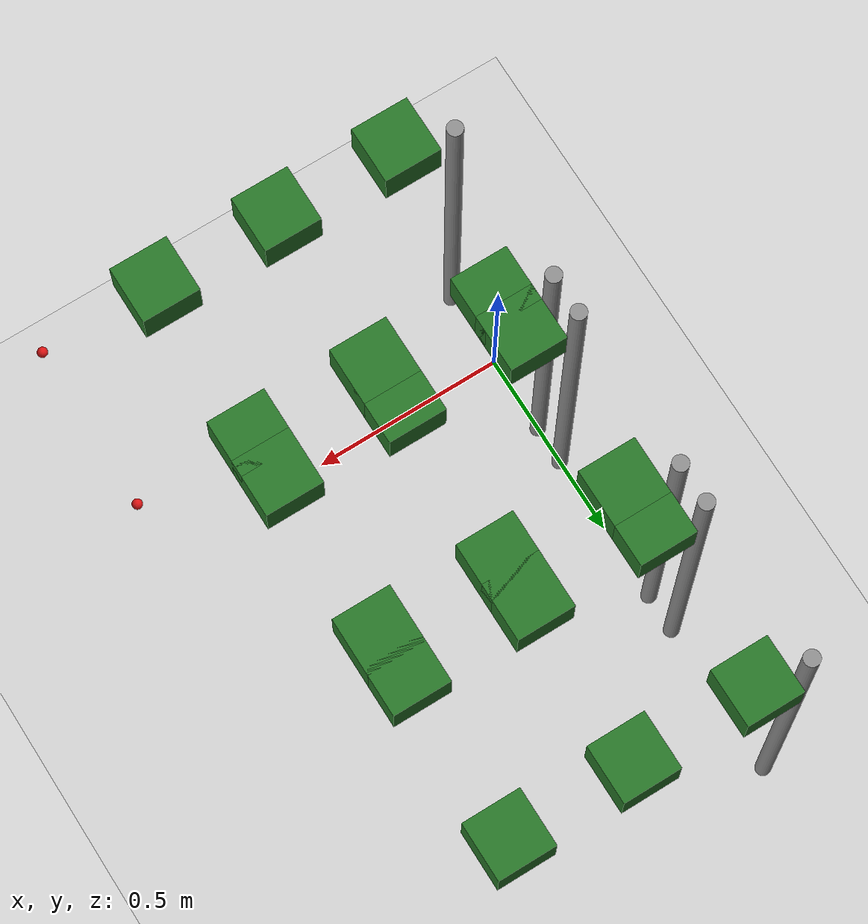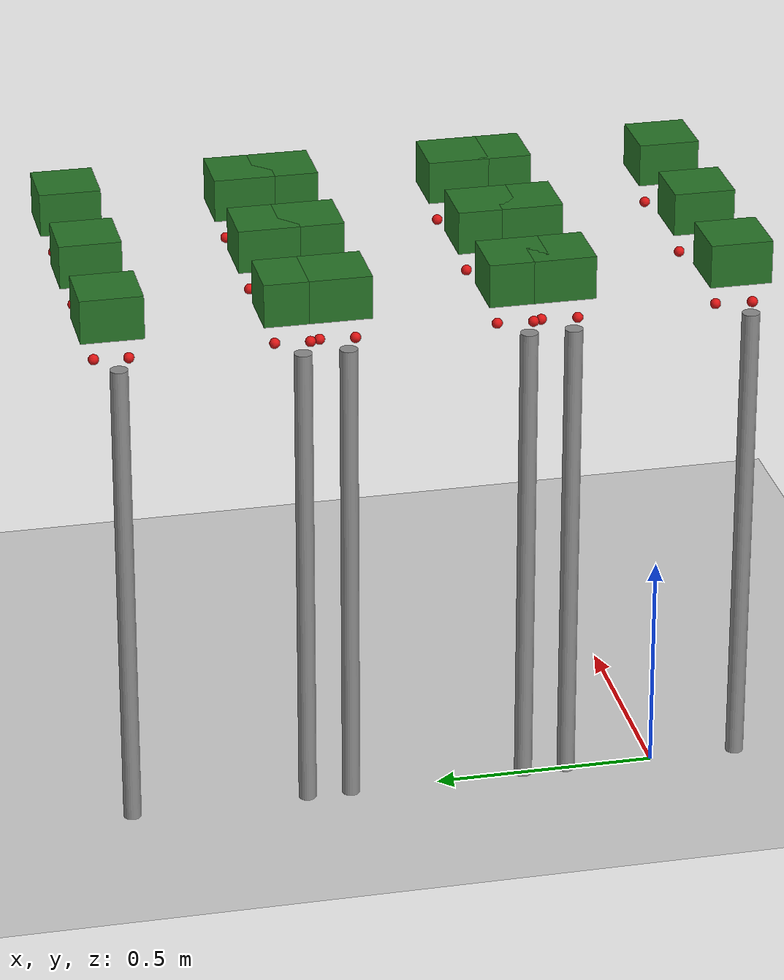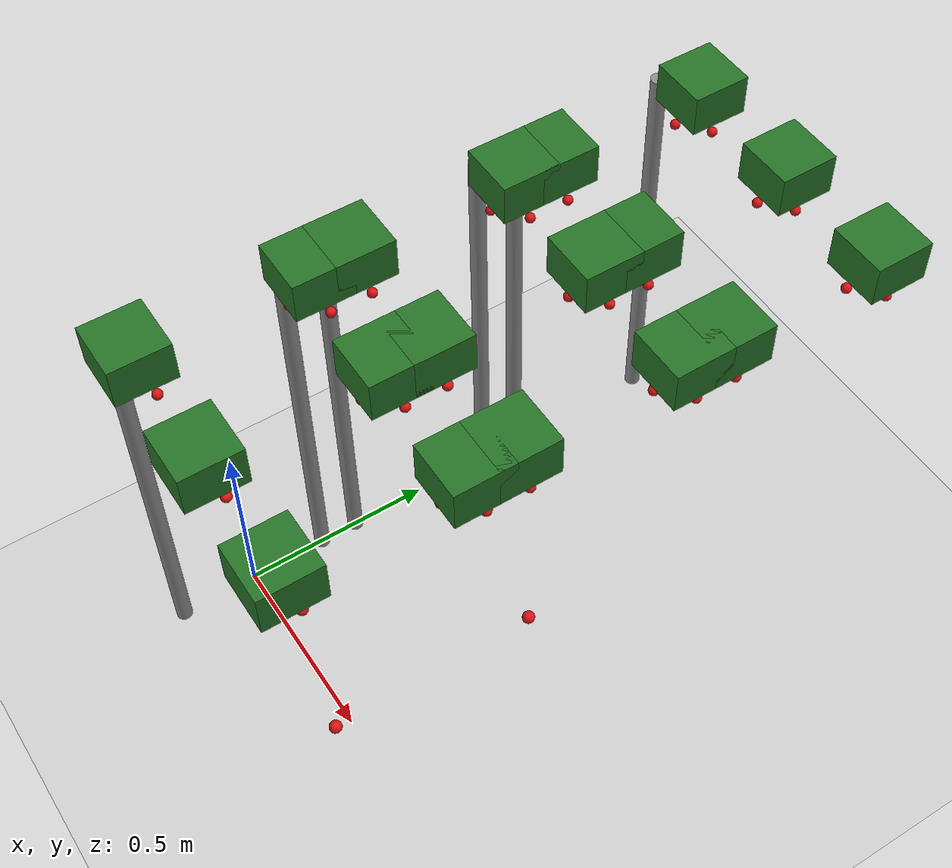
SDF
<sdf version="1.7">
 <world name="irish_polytunnel">
  <include><uri>model://sun</uri></include>
  <include><uri>model://ground_plane</uri></include>
  <model name="row0_L_post0">
   <static>true</static>
   <pose>0.000 0.200 0.550 0 0 0</pose>
   <link name="link">
    <collision name="collision">
     <geometry><cylinder><radius>0.02</radius><length>1.100</length></cylinder></geometry>
    </collision>
    <visual name="visual">
     <geometry><cylinder><radius>0.02</radius><length>1.100</length></cylinder></geometry>
     <material><ambient>0.5 0.5 0.5 1</ambient><diffuse>0.55 0.55 0.55 1</diffuse></material>
    </visual>
   </link>
  </model>
  <model name="row0_L_plant0_foliage">
   <static>true</static>
   <pose>0.150 0.200 1.180 0 0 0</pose>
   <link name="link">
    <visual name="visual">
     <geometry><box><size>0.14 0.14 0.10</size></box></geometry>
     <material><ambient>0.10 0.35 0.10 1</ambient><diffuse>0.15 0.45 0.15 1</diffuse></material>
    </visual>
   </link>
  </model>
  <model name="row0_L_plant0_berry_0">
   <static>true</static>
   <pose>0.120 0.160 1.070 0 0 0</pose>
   <link name="link">
    <visual name="visual">
     <geometry><sphere><radius>0.012</radius></sphere></geometry>
     <material><ambient>0.75 0.05 0.05 1</ambient><diffuse>0.85 0.08 0.08 1</diffuse></material>
    </visual>
   </link>
  </model>
  <model name="row0_L_plant0_berry_1">
   <static>true</static>
   <pose>0.170 0.230 1.050 0 0 0</pose>
   <link name="link">
    <visual name="visual">
     <geometry><sphere><radius>0.012</radius></sphere></geometry>
     <material><ambient>0.75 0.05 0.05 1</ambient><diffuse>0.85 0.08 0.08 1</diffuse></material>
    </visual>
   </link>
  </model>
  <model name="row0_L_plant1_foliage">
   <static>true</static>
   <pose>0.450 0.200 1.180 0 0 0</pose>
   <link name="link">
    <visual name="visual">
     <geometry><box><size>0.14 0.14 0.10</size></box></geometry>
     <material><ambient>0.10 0.35 0.10 1</ambient><diffuse>0.15 0.45 0.15 1</diffuse></material>
    </visual>
   </link>
  </model>
  <model name="row0_L_plant1_berry_0">
   <static>true</static>
   <pose>0.420 0.160 1.070 0 0 0</pose>
   <link name="link">
    <visual name="visual">
     <geometry><sphere><radius>0.012</radius></sphere></geometry>
     <material><ambient>0.75 0.05 0.05 1</ambient><diffuse>0.85 0.08 0.08 1</diffuse></material>
    </visual>
   </link>
  </model>
  <model name="row0_L_plant1_berry_1">
   <static>true</static>
   <pose>0.470 0.230 1.050 0 0 0</pose>
   <link name="link">
    <visual name="visual">
     <geometry><sphere><radius>0.012</radius></sphere></geometry>
     <material><ambient>0.75 0.05 0.05 1</ambient><diffuse>0.85 0.08 0.08 1</diffuse></material>
    </visual>
   </link>
  </model>
  <model name="row0_L_plant2_foliage">
   <static>true</static>
   <pose>0.750 0.200 1.180 0 0 0</pose>
   <link name="link">
    <visual name="visual">
     <geometry><box><size>0.14 0.14 0.10</size></box></geometry>
     <material><ambient>0.10 0.35 0.10 1</ambient><diffuse>0.15 0.45 0.15 1</diffuse></material>
    </visual>
   </link>
  </model>
  <model name="row0_L_plant2_berry_0">
   <static>true</static>
   <pose>0.720 0.160 1.070 0 0 0</pose>
   <link name="link">
    <visual name="visual">
     <geometry><sphere><radius>0.012</radius></sphere></geometry>
     <material><ambient>0.75 0.05 0.05 1</ambient><diffuse>0.85 0.08 0.08 1</diffuse></material>
    </visual>
   </link>
  </model>
  <model name="row0_L_plant2_berry_1">
   <static>true</static>
   <pose>0.770 0.230 1.050 0 0 0</pose>
   <link name="link">
    <visual name="visual">
     <geometry><sphere><radius>0.012</radius></sphere></geometry>
     <material><ambient>0.75 0.05 0.05 1</ambient><diffuse>0.85 0.08 0.08 1</diffuse></material>
    </visual>
   </link>
  </model>
  <model name="row0_L_plant3_berry_0">
   <static>true</static>
   <pose>1.020 0.160 1.070 0 0 0</pose>
   <link name="link">
    <visual name="visual">
     <geometry><sphere><radius>0.012</radius></sphere></geometry>
     <material><ambient>0.75 0.05 0.05 1</ambient><diffuse>0.85 0.08 0.08 1</diffuse></material>
    </visual>
   </link>
  </model>
  <model name="row0_R_post0">
   <static>true</static>
   <pose>0.000 -0.200 0.550 0 0 0</pose>
   <link name="link">
    <collision name="collision">
     <geometry><cylinder><radius>0.02</radius><length>1.100</length></cylinder></geometry>
    </collision>
    <visual name="visual">
     <geometry><cylinder><radius>0.02</radius><length>1.100</length></cylinder></geometry>
     <material><ambient>0.5 0.5 0.5 1</ambient><diffuse>0.55 0.55 0.55 1</diffuse></material>
    </visual>
   </link>
  </model>
  <model name="row0_R_plant0_foliage">
   <static>true</static>
   <pose>0.150 -0.200 1.180 0 0 0</pose>
   <link name="link">
    <visual name="visual">
     <geometry><box><size>0.14 0.14 0.10</size></box></geometry>
     <material><ambient>0.10 0.35 0.10 1</ambient><diffuse>0.15 0.45 0.15 1</diffuse></material>
    </visual>
   </link>
  </model>
  <model name="row0_R_plant0_berry_0">
   <static>true</static>
   <pose>0.120 -0.240 1.070 0 0 0</pose>
   <link name="link">
    <visual name="visual">
     <geometry><sphere><radius>0.012</radius></sphere></geometry>
     <material><ambient>0.75 0.05 0.05 1</ambient><diffuse>0.85 0.08 0.08 1</diffuse></material>
    </visual>
   </link>
  </model>
  <model name="row0_R_plant0_berry_1">
   <static>true</static>
   <pose>0.170 -0.170 1.050 0 0 0</pose>
   <link name="link">
    <visual name="visual">
     <geometry><sphere><radius>0.012</radius></sphere></geometry>
     <material><ambient>0.75 0.05 0.05 1</ambient><diffuse>0.85 0.08 0.08 1</diffuse></material>
    </visual>
   </link>
  </model>
  <model name="row0_R_plant1_foliage">
   <static>true</static>
   <pose>0.450 -0.200 1.180 0 0 0</pose>
   <link name="link">
    <visual name="visual">
     <geometry><box><size>0.14 0.14 0.10</size></box></geometry>
     <material><ambient>0.10 0.35 0.10 1</ambient><diffuse>0.15 0.45 0.15 1</diffuse></material>
    </visual>
   </link>
  </model>
  <model name="row0_R_plant1_berry_0">
   <static>true</static>
   <pose>0.420 -0.240 1.070 0 0 0</pose>
   <link name="link">
    <visual name="visual">
     <geometry><sphere><radius>0.012</radius></sphere></geometry>
     <material><ambient>0.75 0.05 0.05 1</ambient><diffuse>0.85 0.08 0.08 1</diffuse></material>
    </visual>
   </link>
  </model>
  <model name="row0_R_plant1_berry_1">
   <static>true</static>
   <pose>0.470 -0.170 1.050 0 0 0</pose>
   <link name="link">
    <visual name="visual">
     <geometry><sphere><radius>0.012</radius></sphere></geometry>
     <material><ambient>0.75 0.05 0.05 1</ambient><diffuse>0.85 0.08 0.08 1</diffuse></material>
    </visual>
   </link>
  </model>
  <model name="row0_R_plant2_foliage">
   <static>true</static>
   <pose>0.750 -0.200 1.180 0 0 0</pose>
   <link name="link">
    <visual name="visual">
     <geometry><box><size>0.14 0.14 0.10</size></box></geometry>
     <material><ambient>0.10 0.35 0.10 1</ambient><diffuse>0.15 0.45 0.15 1</diffuse></material>
    </visual>
   </link>
  </model>
  <model name="row0_R_plant2_berry_0">
   <static>true</static>
   <pose>0.720 -0.240 1.070 0 0 0</pose>
   <link name="link">
    <visual name="visual">
     <geometry><sphere><radius>0.012</radius></sphere></geometry>
     <material><ambient>0.75 0.05 0.05 1</ambient><diffuse>0.85 0.08 0.08 1</diffuse></material>
    </visual>
   </link>
  </model>
  <model name="row0_R_plant2_berry_1">
   <static>true</static>
   <pose>0.770 -0.170 1.050 0 0 0</pose>
   <link name="link">
    <visual name="visual">
     <geometry><sphere><radius>0.012</radius></sphere></geometry>
     <material><ambient>0.75 0.05 0.05 1</ambient><diffuse>0.85 0.08 0.08 1</diffuse></material>
    </visual>
   </link>
  </model>
  <model name="row0_R_plant3_berry_0">
   <static>true</static>
   <pose>1.020 -0.240 1.070 0 0 0</pose>
   <link name="link">
    <visual name="visual">
     <geometry><sphere><radius>0.012</radius></sphere></geometry>
     <material><ambient>0.75 0.05 0.05 1</ambient><diffuse>0.85 0.08 0.08 1</diffuse></material>
    </visual>
   </link>
  </model>
  <model name="row1_L_post0">
   <static>true</static>
   <pose>0.000 0.700 0.550 0 0 0</pose>
   <link name="link">
    <collision name="collision">
     <geometry><cylinder><radius>0.02</radius><length>1.100</length></cylinder></geometry>
    </collision>
    <visual name="visual">
     <geometry><cylinder><radius>0.02</radius><length>1.100</length></cylinder></geometry>
     <material><ambient>0.5 0.5 0.5 1</ambient><diffuse>0.55 0.55 0.55 1</diffuse></material>
    </visual>
   </link>
  </model>
  <model name="row1_L_plant0_foliage">
   <static>true</static>
   <pose>0.150 0.700 1.180 0 0 0</pose>
   <link name="link">
    <visual name="visual">
     <geometry><box><size>0.14 0.14 0.10</size></box></geometry>
     <material><ambient>0.10 0.35 0.10 1</ambient><diffuse>0.15 0.45 0.15 1</diffuse></material>
    </visual>
   </link>
  </model>
  <model name="row1_L_plant0_berry_0">
   <static>true</static>
   <pose>0.120 0.660 1.070 0 0 0</pose>
   <link name="link">
    <visual name="visual">
     <geometry><sphere><radius>0.012</radius></sphere></geometry>
     <material><ambient>0.75 0.05 0.05 1</ambient><diffuse>0.85 0.08 0.08 1</diffuse></material>
    </visual>
   </link>
  </model>
  <model name="row1_L_plant0_berry_1">
   <static>true</static>
   <pose>0.170 0.730 1.050 0 0 0</pose>
   <link name="link">
    <visual name="visual">
     <geometry><sphere><radius>0.012</radius></sphere></geometry>
     <material><ambient>0.75 0.05 0.05 1</ambient><diffuse>0.85 0.08 0.08 1</diffuse></material>
    </visual>
   </link>
  </model>
  <model name="row1_L_plant1_foliage">
   <static>true</static>
   <pose>0.450 0.700 1.180 0 0 0</pose>
   <link name="link">
    <visual name="visual">
     <geometry><box><size>0.14 0.14 0.10</size></box></geometry>
     <material><ambient>0.10 0.35 0.10 1</ambient><diffuse>0.15 0.45 0.15 1</diffuse></material>
    </visual>
   </link>
  </model>
  <model name="row1_L_plant1_berry_0">
   <static>true</static>
   <pose>0.420 0.660 1.070 0 0 0</pose>
   <link name="link">
    <visual name="visual">
     <geometry><sphere><radius>0.012</radius></sphere></geometry>
     <material><ambient>0.75 0.05 0.05 1</ambient><diffuse>0.85 0.08 0.08 1</diffuse></material>
    </visual>
   </link>
  </model>
  <model name="row1_L_plant1_berry_1">
   <static>true</static>
   <pose>0.470 0.730 1.050 0 0 0</pose>
   <link name="link">
    <visual name="visual">
     <geometry><sphere><radius>0.012</radius></sphere></geometry>
     <material><ambient>0.75 0.05 0.05 1</ambient><diffuse>0.85 0.08 0.08 1</diffuse></material>
    </visual>
   </link>
  </model>
  <model name="row1_L_plant2_foliage">
   <static>true</static>
   <pose>0.750 0.700 1.180 0 0 0</pose>
   <link name="link">
    <visual name="visual">
     <geometry><box><size>0.14 0.14 0.10</size></box></geometry>
     <material><ambient>0.10 0.35 0.10 1</ambient><diffuse>0.15 0.45 0.15 1</diffuse></material>
    </visual>
   </link>
  </model>
  <model name="row1_L_plant2_berry_0">
   <static>true</static>
   <pose>0.720 0.660 1.070 0 0 0</pose>
   <link name="link">
    <visual name="visual">
     <geometry><sphere><radius>0.012</radius></sphere></geometry>
     <material><ambient>0.75 0.05 0.05 1</ambient><diffuse>0.85 0.08 0.08 1</diffuse></material>
    </visual>
   </link>
  </model>
  <model name="row1_L_plant2_berry_1">
   <static>true</static>
   <pose>0.770 0.730 1.050 0 0 0</pose>
   <link name="link">
    <visual name="visual">
     <geometry><sphere><radius>0.012</radius></sphere></geometry>
     <material><ambient>0.75 0.05 0.05 1</ambient><diffuse>0.85 0.08 0.08 1</diffuse></material>
    </visual>
   </link>
  </model>
  <model name="row1_R_post0">
   <static>true</static>
   <pose>0.000 0.300 0.550 0 0 0</pose>
   <link name="link">
    <collision name="collision">
     <geometry><cylinder><radius>0.02</radius><length>1.100</length></cylinder></geometry>
    </collision>
    <visual name="visual">
     <geometry><cylinder><radius>0.02</radius><length>1.100</length></cylinder></geometry>
     <material><ambient>0.5 0.5 0.5 1</ambient><diffuse>0.55 0.55 0.55 1</diffuse></material>
    </visual>
   </link>
  </model>
  <model name="row1_R_plant0_foliage">
   <static>true</static>
   <pose>0.150 0.300 1.180 0 0 0</pose>
   <link name="link">
    <visual name="visual">
     <geometry><box><size>0.14 0.14 0.10</size></box></geometry>
     <material><ambient>0.10 0.35 0.10 1</ambient><diffuse>0.15 0.45 0.15 1</diffuse></material>
    </visual>
   </link>
  </model>
  <model name="row1_R_plant0_berry_0">
   <static>true</static>
   <pose>0.120 0.260 1.070 0 0 0</pose>
   <link name="link">
    <visual name="visual">
     <geometry><sphere><radius>0.012</radius></sphere></geometry>
     <material><ambient>0.75 0.05 0.05 1</ambient><diffuse>0.85 0.08 0.08 1</diffuse></material>
    </visual>
   </link>
  </model>
  <model name="row1_R_plant0_berry_1">
   <static>true</static>
   <pose>0.170 0.330 1.050 0 0 0</pose>
   <link name="link">
    <visual name="visual">
     <geometry><sphere><radius>0.012</radius></sphere></geometry>
     <material><ambient>0.75 0.05 0.05 1</ambient><diffuse>0.85 0.08 0.08 1</diffuse></material>
    </visual>
   </link>
  </model>
  <model name="row1_R_plant1_foliage">
   <static>true</static>
   <pose>0.450 0.300 1.180 0 0 0</pose>
   <link name="link">
    <visual name="visual">
     <geometry><box><size>0.14 0.14 0.10</size></box></geometry>
     <material><ambient>0.10 0.35 0.10 1</ambient><diffuse>0.15 0.45 0.15 1</diffuse></material>
    </visual>
   </link>
  </model>
  <model name="row1_R_plant1_berry_0">
   <static>true</static>
   <pose>0.420 0.260 1.070 0 0 0</pose>
   <link name="link">
    <visual name="visual">
     <geometry><sphere><radius>0.012</radius></sphere></geometry>
     <material><ambient>0.75 0.05 0.05 1</ambient><diffuse>0.85 0.08 0.08 1</diffuse></material>
    </visual>
   </link>
  </model>
  <model name="row1_R_plant1_berry_1">
   <static>true</static>
   <pose>0.470 0.330 1.050 0 0 0</pose>
   <link name="link">
    <visual name="visual">
     <geometry><sphere><radius>0.012</radius></sphere></geometry>
     <material><ambient>0.75 0.05 0.05 1</ambient><diffuse>0.85 0.08 0.08 1</diffuse></material>
    </visual>
   </link>
  </model>
  <model name="row1_R_plant2_foliage">
   <static>true</static>
   <pose>0.750 0.300 1.180 0 0 0</pose>
   <link name="link">
    <visual name="visual">
     <geometry><box><size>0.14 0.14 0.10</size></box></geometry>
     <material><ambient>0.10 0.35 0.10 1</ambient><diffuse>0.15 0.45 0.15 1</diffuse></material>
    </visual>
   </link>
  </model>
  <model name="row1_R_plant2_berry_0">
   <static>true</static>
   <pose>0.720 0.260 1.070 0 0 0</pose>
   <link name="link">
    <visual name="visual">
     <geometry><sphere><radius>0.012</radius></sphere></geometry>
     <material><ambient>0.75 0.05 0.05 1</ambient><diffuse>0.85 0.08 0.08 1</diffuse></material>
    </visual>
   </link>
  </model>
  <model name="row1_R_plant2_berry_1">
   <static>true</static>
   <pose>0.770 0.330 1.050 0 0 0</pose>
   <link name="link">
    <visual name="visual">
     <geometry><sphere><radius>0.012</radius></sphere></geometry>
     <material><ambient>0.75 0.05 0.05 1</ambient><diffuse>0.85 0.08 0.08 1</diffuse></material>
    </visual>
   </link>
  </model>
  <model name="row2_L_post0">
   <static>true</static>
   <pose>0.000 1.200 0.550 0 0 0</pose>
   <link name="link">
    <collision name="collision">
     <geometry><cylinder><radius>0.02</radius><length>1.100</length></cylinder></geometry>
    </collision>
    <visual name="visual">
     <geometry><cylinder><radius>0.02</radius><length>1.100</length></cylinder></geometry>
     <material><ambient>0.5 0.5 0.5 1</ambient><diffuse>0.55 0.55 0.55 1</diffuse></material>
    </visual>
   </link>
  </model>
  <model name="row2_L_plant0_foliage">
   <static>true</static>
   <pose>0.150 1.200 1.180 0 0 0</pose>
   <link name="link">
    <visual name="visual">
     <geometry><box><size>0.14 0.14 0.10</size></box></geometry>
     <material><ambient>0.10 0.35 0.10 1</ambient><diffuse>0.15 0.45 0.15 1</diffuse></material>
    </visual>
   </link>
  </model>
  <model name="row2_L_plant0_berry_0">
   <static>true</static>
   <pose>0.120 1.160 1.070 0 0 0</pose>
   <link name="link">
    <visual name="visual">
     <geometry><sphere><radius>0.012</radius></sphere></geometry>
     <material><ambient>0.75 0.05 0.05 1</ambient><diffuse>0.85 0.08 0.08 1</diffuse></material>
    </visual>
   </link>
  </model>
  <model name="row2_L_plant0_berry_1">
   <static>true</static>
   <pose>0.170 1.230 1.050 0 0 0</pose>
   <link name="link">
    <visual name="visual">
     <geometry><sphere><radius>0.012</radius></sphere></geometry>
     <material><ambient>0.75 0.05 0.05 1</ambient><diffuse>0.85 0.08 0.08 1</diffuse></material>
    </visual>
   </link>
  </model>
  <model name="row2_L_plant1_foliage">
   <static>true</static>
   <pose>0.450 1.200 1.180 0 0 0</pose>
   <link name="link">
    <visual name="visual">
     <geometry><box><size>0.14 0.14 0.10</size></box></geometry>
     <material><ambient>0.10 0.35 0.10 1</ambient><diffuse>0.15 0.45 0.15 1</diffuse></material>
    </visual>
   </link>
  </model>
  <model name="row2_L_plant1_berry_0">
   <static>true</static>
   <pose>0.420 1.160 1.070 0 0 0</pose>
   <link name="link">
    <visual name="visual">
     <geometry><sphere><radius>0.012</radius></sphere></geometry>
     <material><ambient>0.75 0.05 0.05 1</ambient><diffuse>0.85 0.08 0.08 1</diffuse></material>
    </visual>
   </link>
  </model>
  <model name="row2_L_plant1_berry_1">
   <static>true</static>
   <pose>0.470 1.230 1.050 0 0 0</pose>
   <link name="link">
    <visual name="visual">
     <geometry><sphere><radius>0.012</radius></sphere></geometry>
     <material><ambient>0.75 0.05 0.05 1</ambient><diffuse>0.85 0.08 0.08 1</diffuse></material>
    </visual>
   </link>
  </model>
  <model name="row2_L_plant2_foliage">
   <static>true</static>
   <pose>0.750 1.200 1.180 0 0 0</pose>
   <link name="link">
    <visual name="visual">
     <geometry><box><size>0.14 0.14 0.10</size></box></geometry>
     <material><ambient>0.10 0.35 0.10 1</ambient><diffuse>0.15 0.45 0.15 1</diffuse></material>
    </visual>
   </link>
  </model>
  <model name="row2_L_plant2_berry_0">
   <static>true</static>
   <pose>0.720 1.160 1.070 0 0 0</pose>
   <link name="link">
    <visual name="visual">
     <geometry><sphere><radius>0.012</radius></sphere></geometry>
     <material><ambient>0.75 0.05 0.05 1</ambient><diffuse>0.85 0.08 0.08 1</diffuse></material>
    </visual>
   </link>
  </model>
  <model name="row2_L_plant2_berry_1">
   <static>true</static>
   <pose>0.770 1.230 1.050 0 0 0</pose>
   <link name="link">
    <visual name="visual">
     <geometry><sphere><radius>0.012</radius></sphere></geometry>
     <material><ambient>0.75 0.05 0.05 1</ambient><diffuse>0.85 0.08 0.08 1</diffuse></material>
    </visual>
   </link>
  </model>
  <model name="row2_R_post0">
   <static>true</static>
   <pose>0.000 0.800 0.550 0 0 0</pose>
   <link name="link">
    <collision name="collision">
     <geometry><cylinder><radius>0.02</radius><length>1.100</length></cylinder></geometry>
    </collision>
    <visual name="visual">
     <geometry><cylinder><radius>0.02</radius><length>1.100</length></cylinder></geometry>
     <material><ambient>0.5 0.5 0.5 1</ambient><diffuse>0.55 0.55 0.55 1</diffuse></material>
    </visual>
   </link>
  </model>
  <model name="row2_R_plant0_foliage">
   <static>true</static>
   <pose>0.150 0.800 1.180 0 0 0</pose>
   <link name="link">
    <visual name="visual">
     <geometry><box><size>0.14 0.14 0.10</size></box></geometry>
     <material><ambient>0.10 0.35 0.10 1</ambient><diffuse>0.15 0.45 0.15 1</diffuse></material>
    </visual>
   </link>
  </model>
  <model name="row2_R_plant0_berry_0">
   <static>true</static>
   <pose>0.120 0.760 1.070 0 0 0</pose>
   <link name="link">
    <visual name="visual">
     <geometry><sphere><radius>0.012</radius></sphere></geometry>
     <material><ambient>0.75 0.05 0.05 1</ambient><diffuse>0.85 0.08 0.08 1</diffuse></material>
    </visual>
   </link>
  </model>
  <model name="row2_R_plant0_berry_1">
   <static>true</static>
   <pose>0.170 0.830 1.050 0 0 0</pose>
   <link name="link">
    <visual name="visual">
     <geometry><sphere><radius>0.012</radius></sphere></geometry>
     <material><ambient>0.75 0.05 0.05 1</ambient><diffuse>0.85 0.08 0.08 1</diffuse></material>
    </visual>
   </link>
  </model>
  <model name="row2_R_plant1_foliage">
   <static>true</static>
   <pose>0.450 0.800 1.180 0 0 0</pose>
   <link name="link">
    <visual name="visual">
     <geometry><box><size>0.14 0.14 0.10</size></box></geometry>
     <material><ambient>0.10 0.35 0.10 1</ambient><diffuse>0.15 0.45 0.15 1</diffuse></material>
    </visual>
   </link>
  </model>
  <model name="row2_R_plant1_berry_0">
   <static>true</static>
   <pose>0.420 0.760 1.070 0 0 0</pose>
   <link name="link">
    <visual name="visual">
     <geometry><sphere><radius>0.012</radius></sphere></geometry>
     <material><ambient>0.75 0.05 0.05 1</ambient><diffuse>0.85 0.08 0.08 1</diffuse></material>
    </visual>
   </link>
  </model>
  <model name="row2_R_plant1_berry_1">
   <static>true</static>
   <pose>0.470 0.830 1.050 0 0 0</pose>
   <link name="link">
    <visual name="visual">
     <geometry><sphere><radius>0.012</radius></sphere></geometry>
     <material><ambient>0.75 0.05 0.05 1</ambient><diffuse>0.85 0.08 0.08 1</diffuse></material>
    </visual>
   </link>
  </model>
  <model name="row2_R_plant2_foliage">
   <static>true</static>
   <pose>0.750 0.800 1.180 0 0 0</pose>
   <link name="link">
    <visual name="visual">
     <geometry><box><size>0.14 0.14 0.10</size></box></geometry>
     <material><ambient>0.10 0.35 0.10 1</ambient><diffuse>0.15 0.45 0.15 1</diffuse></material>
    </visual>
   </link>
  </model>
  <model name="row2_R_plant2_berry_0">
   <static>true</static>
   <pose>0.720 0.760 1.070 0 0 0</pose>
   <link name="link">
    <visual name="visual">
     <geometry><sphere><radius>0.012</radius></sphere></geometry>
     <material><ambient>0.75 0.05 0.05 1</ambient><diffuse>0.85 0.08 0.08 1</diffuse></material>
    </visual>
   </link>
  </model>
  <model name="row2_R_plant2_berry_1">
   <static>true</static>
   <pose>0.770 0.830 1.050 0 0 0</pose>
   <link name="link">
    <visual name="visual">
     <geometry><sphere><radius>0.012</radius></sphere></geometry>
     <material><ambient>0.75 0.05 0.05 1</ambient><diffuse>0.85 0.08 0.08 1</diffuse></material>
    </visual>
   </link>
  </model>
 </world>
</sdf>
